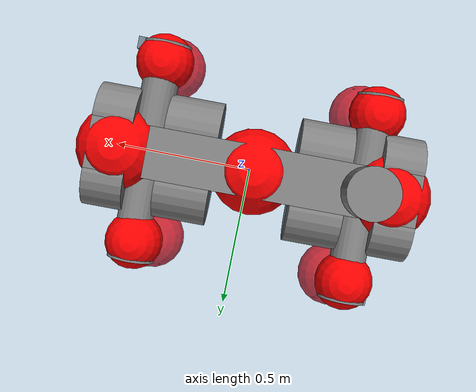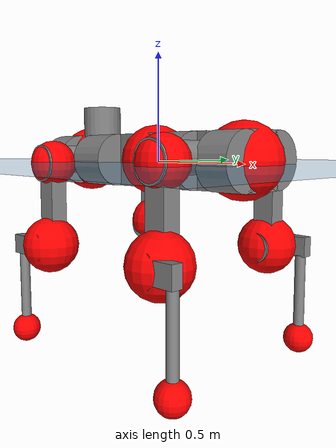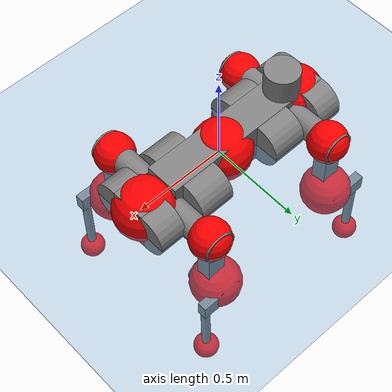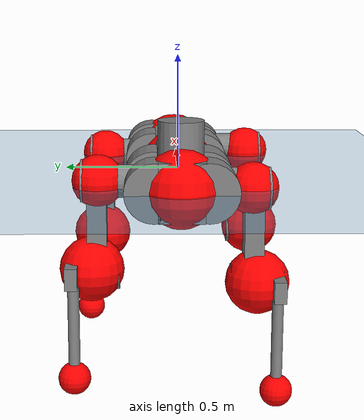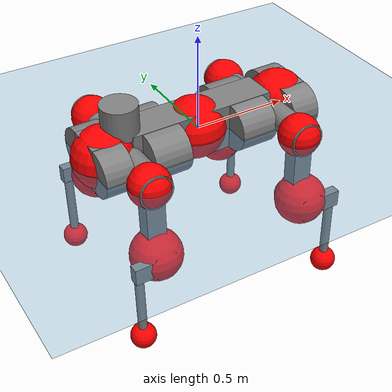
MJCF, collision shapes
<mujoco model="anymal_c">
  <compiler angle="radian" assetdir="assets" balanceinertia="true" inertiafromgeom="false"/>

  <option timestep="0.005" density="1.2" viscosity="2e-05"/>

  <size nkey="1"/>

  <visual>
    <quality shadowsize="8192"/>
    <map shadowclip="0.5"/>
  </visual>

  <default>
    <default class="/">
      <material specular="0" shininess="0.25"/>
      <geom contype="0" conaffinity="0" group="1" solref="-1000 -80"/>
      <site size="0.01 0.005 0.005" group="5"/>
      <general forcelimited="true" forcerange="-80 80" biastype="affine" gainprm="80" biasprm="0 -80 -2"/>
      <default class="anymal_c">
        <joint armature="0.01" damping="0.01" frictionloss="0.1"/>
        <default class="visual">
          <geom type="mesh" group="2"/>
          <default class="visual_zflip"/>
        </default>
        <default class="collision">
          <geom type="cylinder" group="3"/>
          <default class="foot">
            <geom size="0.03 0 0" type="sphere" condim="6" priority="1" friction="0.8 0.02 0.01" solimp="0.015 1 0.03"/>
          </default>
        </default>
      </default>
      <default class="reward_collision_sphere">
        <geom group="5" rgba="1 0 0 1"/>
      </default>
    </default>
  </default>

  <asset>
    <texture type="skybox" colorspace="auto" name="//unnamed_texture_0" builtin="gradient" rgb1="0.95 0.95 0.95" rgb2="0.95 0.95 0.95" width="100" height="600"/>
    <texture type="2d" colorspace="auto" name="texplane" builtin="checker" rgb1="0.345 0.575 0.748" rgb2="0.345 0.575 0.748" markrgb="1 1 1" width="512" height="512"/>
    <texture type="2d" colorspace="linear" name="base" file="base.png"/>
    <texture type="2d" colorspace="linear" name="top_shell" file="top_shell.png"/>
    <texture type="2d" colorspace="linear" name="bottom_shell" file="bottom_shell.png"/>
    <texture type="2d" colorspace="linear" name="remote" file="remote.png"/>
    <texture type="2d" colorspace="linear" name="hatch" file="hatch.png"/>
    <texture type="2d" colorspace="linear" name="handle" file="handle.png"/>
    <texture type="2d" colorspace="linear" name="face" file="face.png"/>
    <texture type="2d" colorspace="linear" name="battery" file="battery.png"/>
    <texture type="2d" colorspace="linear" name="lidar_cage" file="lidar_cage.png"/>
    <texture type="2d" colorspace="linear" name="depth_camera" file="depth_camera.png"/>
    <texture type="2d" colorspace="linear" name="wide_angle_camera" file="wide_angle_camera.png"/>
    <texture type="2d" colorspace="linear" name="lidar" file="lidar.png"/>
    <texture type="2d" colorspace="linear" name="drive" file="drive.png"/>
    <texture type="2d" colorspace="linear" name="hip_l" file="hip_l.png"/>
    <texture type="2d" colorspace="linear" name="shank_l" file="shank_l.png"/>
    <texture type="2d" colorspace="linear" name="foot" file="foot.png"/>
    <texture type="2d" colorspace="linear" name="thigh" file="thigh.png"/>
    <texture type="2d" colorspace="linear" name="shank_r" file="shank_r.png"/>
    <texture type="2d" colorspace="linear" name="hip_r" file="hip_r.png"/>
    <material name="MatPlane" class="/" texture="texplane" texuniform="true" texrepeat="2 2" specular="0.9" shininess="0.5"/>
    <material name="black_plastic" class="/" rgba="0.007 0.007 0.007 1"/>
    <material name="green" class="/" rgba="0.052 0.178 0.033 1"/>
    <material name="red" class="/" rgba="0.178 0.006 0.005 1"/>
    <material name="yellow" class="/" rgba="0.178 0.119 0.006 1"/>
    <material name="lwl" class="/" rgba="0.8 0.8 0.8 1"/>
    <material name="base" class="/" texture="base"/>
    <material name="top_shell" class="/" texture="top_shell"/>
    <material name="bottom_shell" class="/" texture="bottom_shell"/>
    <material name="hip_l" class="/" texture="hip_l"/>
    <material name="thigh" class="/" texture="thigh"/>
    <material name="shank_l" class="/" texture="shank_l"/>
    <material name="foot" class="/" texture="foot"/>
    <material name="hip_r" class="/" texture="hip_r"/>
    <material name="shank" class="/" texture="shank_r"/>
    <material name="hatch" class="/" texture="hatch"/>
    <material name="remote" class="/" texture="remote"/>
    <material name="handle" class="/" texture="handle"/>
    <material name="face" class="/" texture="face"/>
    <material name="depth_camera" class="/" texture="depth_camera"/>
    <material name="wide_angle_camera" class="/" texture="wide_angle_camera"/>
    <material name="battery" class="/" texture="battery"/>
    <material name="lidar_cage" class="/" texture="lidar_cage"/>
    <material name="lidar" class="/" texture="lidar"/>
    <material name="drive" class="/" texture="drive"/>
    <mesh name="base_0" class="/" file="base_0.obj"/>
    <mesh name="base_1" class="/" file="base_1.obj"/>
    <mesh name="base_2" class="/" file="base_2.obj"/>
    <mesh name="base_3" class="/" file="base_3.obj"/>
    <mesh name="base_4" class="/" file="base_4.obj"/>
    <mesh name="base_5" class="/" file="base_5.obj"/>
    <mesh name="top_shell" class="/" file="top_shell.obj"/>
    <mesh name="bottom_shell" class="/" file="bottom_shell.obj"/>
    <mesh name="remote" class="/" file="remote.obj"/>
    <mesh name="handle" class="/" file="handle.obj"/>
    <mesh name="face" class="/" file="face.obj"/>
    <mesh name="wide_angle_camera" class="/" file="wide_angle_camera.obj"/>
    <mesh name="depth_camera" class="/" file="depth_camera.obj"/>
    <mesh name="battery" class="/" file="battery.obj"/>
    <mesh name="lidar_cage" class="/" file="lidar_cage.obj"/>
    <mesh name="lidar" class="/" file="lidar.obj"/>
    <mesh name="drive" class="/" file="drive.obj"/>
    <mesh name="hip_l" class="/" file="hip_l.obj"/>
    <mesh name="thigh" class="/" file="thigh.obj"/>
    <mesh name="shank_l" class="/" file="shank_l.obj"/>
    <mesh name="foot" class="/" file="foot.obj"/>
    <mesh name="hip_r" class="/" file="hip_r.obj"/>
    <mesh name="hatch" class="/" file="hatch.obj"/>
    <mesh name="shank_r" class="/" file="shank_r.obj"/>
  </asset>

  <worldbody>
    <geom name="floor" class="/" size="100 100 0.125" type="plane" group="0" material="MatPlane"/>
    <light name="toplight_shadow" class="/" pos="0 0 5" dir="0.0990148 0.0990148 -0.990148" type="directional" ambient="0.04 0.04 0.04" diffuse="0.55 0.55 0.55" specular="0.12 0.12 0.12"/>
    <light name="toplight_fill" class="/" pos="0 0 5" dir="0.0990148 0.0990148 -0.990148" type="directional" castshadow="false" ambient="0.04 0.04 0.04" diffuse="0.3 0.3 0.3" specular="0.08 0.08 0.08"/>
    <body name="trunk" childclass="anymal_c" pos="-0.0174309 0.00314984 0.00972427" quat="0.999968 0.00196452 -0.00357227 0.00686792">
      <inertial pos="0.019515 -0.00940412 0.073209" quat="0.517518 0.502401 0.479909 0.499456" mass="50.7633" diaginertia="0.992214 4.91825 0.809701"/>
      <joint name="//unnamed_joint_0" type="free" armature="0" damping="0" frictionloss="0"/>
      <geom name="//unnamed_geom_1" class="visual" material="green" mesh="base_0"/>
      <geom name="//unnamed_geom_2" class="visual" material="yellow" mesh="base_1"/>
      <geom name="//unnamed_geom_3" class="visual" material="red" mesh="base_2"/>
      <geom name="//unnamed_geom_4" class="visual" material="black_plastic" mesh="base_3"/>
      <geom name="//unnamed_geom_5" class="visual" material="lwl" mesh="base_4"/>
      <geom name="//unnamed_geom_6" class="visual" material="base" mesh="base_5"/>
      <geom name="trunk_1" class="collision" size="0.390213 0.0941893 0.1211" type="box"/>
      <geom name="trunk_2" class="collision" size="0.1211 0.0975532" pos="0.243629 0.108884 0" quat="0.707107 0 0.707107 0"/>
      <geom name="trunk_3" class="collision" size="0.1211 0.0975532" pos="-0.243629 0.108884 0" quat="0.707107 0 0.707107 0"/>
      <geom name="trunk_4" class="collision" size="0.1211 0.0975532" pos="0.243629 -0.108884 0" quat="0.707107 0 0.707107 0"/>
      <geom name="trunk_5" class="collision" size="0.1211 0.0975532" pos="-0.243629 -0.108884 0" quat="0.707107 0 0.707107 0"/>
      <geom name="//unnamed_geom_12" class="visual" material="top_shell" mesh="top_shell"/>
      <geom name="//unnamed_geom_13" class="visual" material="bottom_shell" mesh="bottom_shell"/>
      <geom name="//unnamed_geom_14" class="visual" material="remote" mesh="remote"/>
      <geom name="//unnamed_geom_15" class="visual" material="handle" mesh="handle"/>
      <geom name="//unnamed_geom_16" class="visual" pos="0.464294 0 0" quat="1 0 0 0" material="face" mesh="face"/>
      <geom name="trunk_6" class="collision" size="0.0740059 0.0941893 0.1211" pos="0.525902 0 0" type="box"/>
      <geom name="//unnamed_geom_18" class="collision" size="0.1211 0.0740059" pos="0.525902 0.108884 0" quat="0.707107 0 0.707107 0"/>
      <geom name="//unnamed_geom_19" class="collision" size="0.1211 0.0740059" pos="0.525902 -0.108884 0" quat="0.707107 0 0.707107 0"/>
      <geom name="//unnamed_geom_20" class="visual" pos="0.517119 0 -0.041574" quat="0.965926 0 0.258819 0" material="depth_camera" mesh="depth_camera"/>
      <geom name="//unnamed_geom_21" class="visual" pos="0.574627 0 0.0203751" material="wide_angle_camera" mesh="wide_angle_camera"/>
      <geom name="//unnamed_geom_22" class="visual_zflip" pos="-0.464294 0 0" quat="0 0 0 1" material="face" mesh="face"/>
      <geom name="trunk_7" class="collision" size="0.0740059 0.0941893 0.1211" pos="-0.525902 0 0" quat="0 0 0 1" type="box"/>
      <geom name="//unnamed_geom_24" class="collision" size="0.1211 0.0740059" pos="-0.525902 -0.108884 0" quat="0 -0.707107 0 0.707107"/>
      <geom name="//unnamed_geom_25" class="collision" size="0.1211 0.0740059" pos="-0.525902 0.108884 0" quat="0 -0.707107 0 0.707107"/>
      <geom name="//unnamed_geom_26" class="visual" pos="-0.517119 0 -0.041574" quat="0 -0.258819 0 0.965926" material="depth_camera" mesh="depth_camera"/>
      <geom name="//unnamed_geom_27" class="visual_zflip" pos="-0.574627 0 0.0203751" quat="0 0 0 1" material="wide_angle_camera" mesh="wide_angle_camera"/>
      <geom name="//unnamed_geom_28" class="visual" material="battery" mesh="battery"/>
      <geom name="//unnamed_geom_29" class="visual" pos="0 0.124656 0.0377077" quat="0.683013 -0.183013 0.183013 0.683013" material="depth_camera" mesh="depth_camera"/>
      <geom name="//unnamed_geom_30" class="visual" pos="0 -0.124656 0.0377077" quat="0.683013 0.183013 0.183013 -0.683013" material="depth_camera" mesh="depth_camera"/>
      <geom name="//unnamed_geom_31" class="visual" pos="-0.407728 0 0.100038" quat="1 0 0 0" material="lidar_cage" mesh="lidar_cage"/>
      <geom name="trunk_8" class="collision" size="0.0941893 0.0807337" pos="-0.407728 0 0.181701"/>
      <geom name="//unnamed_geom_33" class="visual" pos="-0.407728 0.000171042 0.193543" quat="0.707107 0 0 -0.707107" material="lidar" mesh="lidar"/>
      <geom name="//unnamed_geom_34" class="visual" pos="0.335927 0.161702 3.354e-09" quat="0.258819 0.965926 0 0" material="drive" mesh="drive"/>
      <geom name="//unnamed_geom_35" class="visual" pos="0.335927 -0.161702 -3.354e-09" quat="0.258819 -0.965926 0 0" material="drive" mesh="drive"/>
      <geom name="//unnamed_geom_36" class="visual" pos="-0.335927 0.161702 -3.354e-09" quat="0 0 0.965926 -0.258819" material="drive" mesh="drive"/>
      <geom name="//unnamed_geom_37" class="visual" pos="-0.335927 -0.161702 3.354e-09" quat="0 0 -0.965926 -0.258819" material="drive" mesh="drive"/>
      <geom name="//unnamed_geom_38" class="visual" pos="0.129935 0 0.0993573" quat="1 0 0 0" material="hatch" mesh="hatch"/>
      <geom name="//unnamed_geom_39" class="reward_collision_sphere" size="0.161467"/>
      <geom name="//unnamed_geom_40" class="reward_collision_sphere" size="0.161467" pos="0.504059 0 0"/>
      <geom name="//unnamed_geom_41" class="reward_collision_sphere" size="0.161467" pos="-0.504059 0 0"/>
      <site name="imu" pos="0.295786 -0.0402488 -0.014647" size="0.0134556"/>
      <camera name="track" pos="0 -3.11099 0" quat="0.707107 0.707107 0 0" mode="trackcom"/>
      <camera name="ego_camera" pos="0.504059 0 -0.0544424" quat="-0.5 -0.5 0.5 0.5"/>
      <body name="LF_HIP" pos="0.335617 0.168813 -0.00894761" quat="0.263261 0.964724 0.000988035 -0.00059117">
        <inertial pos="0.057479 -0.0108241 -0.00679809" quat="-0.14278 0.700195 -0.135242 0.686331" mass="7.02761" diaginertia="0.00746054 0.0360939 0.0152286"/>
        <joint name="LF_HAA" pos="0 0 0" axis="0.996307 -0.0338138 0.0789189" stiffness="0.0420681" range="-1.05867 0.5708" armature="0.0139716" damping="0" frictionloss="0.13315"/>
        <geom name="//unnamed_geom_42" class="visual" pos="0 0.000197301 -3.24065e-05" quat="0.258819 -0.965926 0 0" material="hip_l" mesh="hip_l"/>
        <geom name="//unnamed_geom_43" class="visual" pos="0.0670959 -0.086964 -0.0487706" quat="0.183013 -0.683013 0.683013 0.183013" material="drive" mesh="drive"/>
        <geom name="//unnamed_geom_44" class="collision" size="0.0672781 0.0941893" pos="0.0670959 -0.0186034 -0.00939811" quat="-0.353553 -0.612372 0.612372 -0.353553"/>
        <body name="LF_THIGH" pos="0.0570338 -0.116396 -0.0678616" quat="0.183604 -0.687787 0.67907 0.179172">
          <inertial pos="0.021779 0.0118781 -0.318607" quat="0.993521 -0.00483363 -0.0785339 0.0820082" mass="9.00704" diaginertia="0.0542428 0.303504 0.0176406"/>
          <joint name="LF_HFE" pos="0 0 0" axis="0.999221 0.0319386 0.0231685" stiffness="0.0885839" range="-3.32834 3.15223" armature="0.0198198" damping="0.000198388" frictionloss="0.188504"/>
          <geom name="//unnamed_geom_45" class="visual" pos="-0.00866198 -1.36493e-05 0" quat="0.707107 0 0 -0.707107" material="thigh" mesh="thigh"/>
          <geom name="//unnamed_geom_46" class="collision" size="0.0874615 0.0538224" pos="0.0448053 0 0" quat="0.5 0.5 -0.5 -0.5"/>
          <geom name="//unnamed_geom_47" class="collision" size="0.0504585 0.0403668 0.190147" pos="0.0336039 0 -0.192337" quat="0.707107 0 0 -0.707107" type="box"/>
          <geom name="//unnamed_geom_48" class="visual" pos="0.112349 0 -0.387902" quat="1 0 0 0" material="drive" mesh="drive"/>
          <geom name="//unnamed_geom_49" class="collision" size="0.0672781 0.0941893" pos="0.03394 0 -0.387902" quat="0.707107 0 0.707107 0"/>
          <geom name="//unnamed_geom_50" class="reward_collision_sphere" size="0.107645" pos="0.0280033 0 0"/>
          <body name="LF_SHANK" pos="0.108186 0.0159266 -0.386957" quat="0.999983 0.00259911 -0.00515548 0.000598891">
            <inertial pos="0.0202772 -0.0944558 -0.121967" quat="0.990002 -0.123845 -0.00903238 -0.0669067" mass="1.35939" diaginertia="0.0158886 0.0557492 0.00369422"/>
            <joint name="LF_KFE" pos="0 0 0" axis="0.999188 -0.023205 -0.0329367" range="-2.82412 3.0832" armature="0.00706533" damping="0.0859777" frictionloss="0.064725"/>
            <geom name="//unnamed_geom_51" class="visual" pos="-0.00282448 -0.0150603 0" quat="0.707107 0 0 -0.707107" material="shank_l" mesh="shank_l"/>
            <geom name="LF_kfe_act" class="collision" size="0.0807337 0.0269112" pos="0.0224026 0 0" quat="0.5 0.5 -0.5 -0.5"/>
            <geom name="//unnamed_geom_53" class="collision" size="0.0773684 0.0454127 0.0255657" pos="0.0224026 -0.0894393 0" quat="0.5 0.5 -0.5 -0.5" type="box"/>
            <geom name="//unnamed_geom_54" class="visual" pos="0.0146184 -0.141659 -0.459997" quat="0.382683 0 0 -0.92388" material="foot" mesh="foot"/>
            <geom name="LF_calf" class="collision" size="0.0235473 0.190063" pos="0.0146177 -0.136806 -0.229999" quat="0.707107 0 0 -0.707107"/>
            <geom name="LF_foot" class="foot" size="0.0319799" pos="0.0146177 -0.136806 -0.429373" quat="0.707107 0 0 -0.707107"/>
            <geom name="//unnamed_geom_57" class="reward_collision_sphere" size="0.134556" pos="-0.0560066 0 0"/>
            <geom name="//unnamed_geom_58" class="reward_collision_sphere" size="0.0672781" pos="0.0146177 -0.136806 -0.429373"/>
            <site name="LF_foot" class="foot" pos="0.0146177 -0.136806 -0.429373" quat="0.707107 0 0 -0.707107" size="0.0134556"/>
          </body>
        </body>
      </body>
      <body name="RF_HIP" pos="0.331524 -0.168919 0.0160837" quat="0.254531 -0.967051 0.00457174 -0.00224795">
        <inertial pos="0.0532779 0.0389081 -0.0111485" quat="0.104004 0.727217 0.116666 0.668377" mass="6.79086" diaginertia="0.013672 0.0506573 0.0200485"/>
        <joint name="RF_HAA" pos="0 0 0" axis="0.998621 -0.000787218 0.0524851" stiffness="0.0325285" range="-0.647863 0.72307" armature="0.00896175" damping="0" frictionloss="0.232649"/>
        <geom name="//unnamed_geom_59" class="visual" pos="0 -0.000197299 -3.24064e-05" quat="0.258819 0.965926 0 0" material="hip_r" mesh="hip_r"/>
        <geom name="//unnamed_geom_60" class="visual" pos="0.0670959 0.086964 -0.0487706" quat="0.183013 0.683013 0.683013 -0.183013" material="drive" mesh="drive"/>
        <geom name="//unnamed_geom_61" class="collision" size="0.0672781 0.0941893" pos="0.0670959 0.0186034 -0.00939811" quat="-0.353553 0.612372 0.612372 0.353553"/>
        <body name="RF_THIGH" pos="0.0668345 0.130118 -0.0583086" quat="0.182804 0.682966 0.682835 -0.184058">
          <inertial pos="0.0237357 0.0134369 -0.330734" quat="0.993894 -0.0390897 -0.032357 0.0979751" mass="7.18778" diaginertia="0.0626322 0.335199 0.018023"/>
          <joint name="RF_HFE" pos="0 0 0" axis="0.999991 -0.00227133 0.00361194" stiffness="0.0550617" range="-3.05405 2.86084" armature="0.0130814" damping="0.0371261" frictionloss="0.0718893"/>
          <geom name="//unnamed_geom_62" class="visual" pos="-0.00866198 -1.36493e-05 0" quat="0.707107 0 0 -0.707107" material="thigh" mesh="thigh"/>
          <geom name="//unnamed_geom_63" class="collision" size="0.0874615 0.0538224" pos="0.0448053 0 0" quat="0.5 0.5 0.5 0.5"/>
          <geom name="//unnamed_geom_64" class="collision" size="0.0504585 0.0403668 0.190147" pos="0.0336039 0 -0.192337" quat="0.707107 0 0 0.707107" type="box"/>
          <geom name="//unnamed_geom_65" class="visual" pos="0.112349 0 -0.387902" quat="1 0 0 0" material="drive" mesh="drive"/>
          <geom name="//unnamed_geom_66" class="collision" size="0.0672781 0.0941893" pos="0.03394 0 -0.387902" quat="0.707107 0 0.707107 0"/>
          <geom name="//unnamed_geom_67" class="reward_collision_sphere" size="0.107645" pos="0.0280033 0 0"/>
          <body name="RF_SHANK" pos="0.112697 0.0138641 -0.380187" quat="1 -0.000372315 -0.00015503 0.000174301">
            <inertial pos="0.00694158 0.0923183 -0.111367" quat="0.991258 0.11659 0.0562703 -0.0254462" mass="1.48841" diaginertia="0.0179853 0.0843965 0.00610828"/>
            <joint name="RF_KFE" pos="0 0 0" axis="0.996623 -0.00405977 -0.0820143" stiffness="0.0741078" range="-3.19566 2.88693" armature="0.0189787" damping="0" frictionloss="0.193543"/>
            <geom name="//unnamed_geom_68" class="visual" pos="-0.00282447 0.0150603 0" quat="0.707107 0 0 0.707107" material="shank" mesh="shank_r"/>
            <geom name="RF_kfe_act" class="collision" size="0.0807337 0.0269112" pos="0.0224026 0 0" quat="0.5 0.5 0.5 0.5"/>
            <geom name="//unnamed_geom_70" class="collision" size="0.0773684 0.0454127 0.0255657" pos="0.0224026 0.0894393 0" quat="0.5 0.5 0.5 0.5" type="box"/>
            <geom name="//unnamed_geom_71" class="visual" pos="0.014617 0.141659 -0.459997" quat="0.382683 0 0 0.92388" material="foot" mesh="foot"/>
            <geom name="RF_calf" class="collision" size="0.0235473 0.190063" pos="0.0146177 0.136806 -0.229999" quat="0.707107 0 0 0.707107"/>
            <geom name="RF_foot" class="foot" size="0.0512643" pos="0.0146177 0.136806 -0.429373" quat="0.707107 0 0 0.707107"/>
            <geom name="//unnamed_geom_74" class="reward_collision_sphere" size="0.134556" pos="-0.0560066 0 0"/>
            <geom name="//unnamed_geom_75" class="reward_collision_sphere" size="0.0672781" pos="0.0146177 0.136806 -0.429373"/>
            <site name="RF_foot" class="foot" pos="0.0146177 0.136806 -0.429373" quat="0.707107 0 0 0.707107" size="0.0134556"/>
          </body>
        </body>
      </body>
      <body name="LH_HIP" pos="-0.334661 0.160804 0.0131294" quat="6.11777e-05 -0.000111609 0.966157 -0.257955">
        <inertial pos="0.0551581 0.00731005 0.00175718" quat="0.0759158 0.650086 0.182713 0.733649" mass="5.00218" diaginertia="0.00914622 0.0425209 0.0114568"/>
        <joint name="LH_HAA" pos="0 0 0" axis="0.999966 -0.00816663 -0.000669501" range="-0.399899 0.944501" armature="0.0222529" damping="0.0390117" frictionloss="0.0316339"/>
        <geom name="//unnamed_geom_76" class="visual" pos="0 -0.000197299 -3.24064e-05" quat="-0.258819 -0.965926 0 0" material="hip_r" mesh="hip_r"/>
        <geom name="//unnamed_geom_77" class="visual" pos="0.0670959 0.086964 -0.0487706" quat="0.183013 0.683013 0.683013 -0.183013" material="drive" mesh="drive"/>
        <geom name="//unnamed_geom_78" class="collision" size="0.0672781 0.0941893" pos="0.0670959 0.0186034 -0.00939811" quat="-0.353553 0.612372 0.612372 0.353553"/>
        <body name="LH_THIGH" pos="0.0655262 0.127813 -0.0722882" quat="0.184065 0.681504 0.684182 -0.183212">
          <inertial pos="0.0350762 5.0864e-05 -0.339527" quat="0.990216 -0.0136446 -0.0626146 0.123957" mass="5.42226" diaginertia="0.0472351 0.233028 0.0151879"/>
          <joint name="LH_HFE" pos="0 0 0" axis="0.998387 -0.0494916 0.0278365" range="-3.19879 3.07716" armature="0.00514695" damping="0.0683494" frictionloss="0.138911"/>
          <geom name="//unnamed_geom_79" class="visual" pos="-0.00866198 -1.36493e-05 0" quat="0.707107 0 0 -0.707107" material="thigh" mesh="thigh"/>
          <geom name="//unnamed_geom_80" class="collision" size="0.0874615 0.0538224" pos="0.0448053 0 0" quat="0.5 0.5 -0.5 -0.5"/>
          <geom name="//unnamed_geom_81" class="collision" size="0.0504585 0.0403668 0.190147" pos="0.0336039 0 -0.192337" quat="0.707107 0 0 -0.707107" type="box"/>
          <geom name="//unnamed_geom_82" class="visual" pos="0.112349 0 -0.387902" quat="1 0 0 0" material="drive" mesh="drive"/>
          <geom name="//unnamed_geom_83" class="collision" size="0.0672781 0.0941893" pos="0.03394 0 -0.387902" quat="0.707107 0 0.707107 0"/>
          <geom name="//unnamed_geom_84" class="reward_collision_sphere" size="0.107645" pos="0.0280033 0 0"/>
          <body name="LH_SHANK" pos="0.111511 -0.000909938 -0.371863" quat="0.999996 -0.00132197 0.00254571 -0.000105881">
            <inertial pos="0.0141756 0.0782843 -0.112906" quat="0.991356 0.108743 -0.0343242 0.0648799" mass="1.28452" diaginertia="0.0183272 0.0732246 0.00572888"/>
            <joint name="LH_KFE" pos="0 0 0" axis="0.999672 -0.0141502 -0.0213554" stiffness="0.0875678" range="-3.14695 2.95197" armature="0.00671806" damping="0.063741" frictionloss="0.0221986"/>
            <geom name="//unnamed_geom_85" class="visual" pos="-0.00282447 0.0150603 0" quat="-0.707107 0 0 -0.707107" material="shank" mesh="shank_r"/>
            <geom name="LH_kfe_act" class="collision" size="0.0807337 0.0269112" pos="0.0224026 0 0" quat="0.5 0.5 -0.5 -0.5"/>
            <geom name="//unnamed_geom_87" class="collision" size="0.0773684 0.0454127 0.0255657" pos="0.0224026 0.0894393 0" quat="0.5 0.5 -0.5 -0.5" type="box"/>
            <geom name="//unnamed_geom_88" class="visual" pos="0.014617 0.141659 -0.459997" quat="-0.382683 0 0 -0.92388" material="foot" mesh="foot"/>
            <geom name="LH_calf" class="collision" size="0.0235473 0.190063" pos="0.0146177 0.136806 -0.229999" quat="0.707107 0 0 -0.707107"/>
            <geom name="LH_foot" class="foot" size="0.0556289" pos="0.0146177 0.136806 -0.429373" quat="0.707107 0 0 -0.707107"/>
            <geom name="//unnamed_geom_91" class="reward_collision_sphere" size="0.134556" pos="-0.0560066 0 0"/>
            <geom name="//unnamed_geom_92" class="reward_collision_sphere" size="0.0672781" pos="0.0146177 0.136806 -0.429373"/>
            <site name="LH_foot" class="foot" pos="0.0146177 0.136806 -0.429373" quat="0.707107 0 0 -0.707107" size="0.0134556"/>
          </body>
        </body>
      </body>
      <body name="RH_HIP" pos="-0.343893 -0.151525 0.00507622" quat="-0.00675146 0.00132334 -0.967061 -0.254451">
        <inertial pos="0.0466795 -0.0368764 0.00539379" quat="-0.152738 0.687809 -0.0882127 0.704137" mass="6.79335" diaginertia="0.0105043 0.0458862 0.0159976"/>
        <joint name="RH_HAA" pos="0 0 0" axis="0.996322 -0.0670276 0.0533813" range="-0.882156 0.393744" armature="0.0205159" damping="0.0344718" frictionloss="0.0978547"/>
        <geom name="//unnamed_geom_93" class="visual" pos="0 0.000197301 -3.24065e-05" quat="-0.258819 0.965926 0 0" material="hip_l" mesh="hip_l"/>
        <geom name="//unnamed_geom_94" class="visual" pos="0.0670959 -0.086964 -0.0487706" quat="-0.183013 0.683013 -0.683013 -0.183013" material="drive" mesh="drive"/>
        <geom name="//unnamed_geom_95" class="collision" size="0.0672781 0.0941893" pos="0.0670959 -0.0186034 -0.00939811" quat="0.353553 0.612372 -0.612372 0.353553"/>
        <body name="RH_THIGH" pos="0.0737853 -0.109679 -0.0401717" quat="-0.18298 0.682965 -0.682992 -0.183299">
          <inertial pos="0.0388356 -0.000839501 -0.335126" quat="0.992828 -0.00438981 -0.0866454 0.0822547" mass="8.82417" diaginertia="0.0565205 0.230678 0.0193711"/>
          <joint name="RH_HFE" pos="0 0 0" axis="0.99961 0.0077109 -0.0268257" range="-3.13635 2.84519" armature="0.0159924" damping="0.0048693" frictionloss="0.0974382"/>
          <geom name="//unnamed_geom_96" class="visual" pos="-0.00866198 -1.36493e-05 0" quat="0.707107 0 0 -0.707107" material="thigh" mesh="thigh"/>
          <geom name="//unnamed_geom_97" class="collision" size="0.0874615 0.0538224" pos="0.0448053 0 0" quat="0.5 0.5 0.5 0.5"/>
          <geom name="//unnamed_geom_98" class="collision" size="0.0504585 0.0403668 0.190147" pos="0.0336039 0 -0.192337" quat="0.707107 0 0 0.707107" type="box"/>
          <geom name="//unnamed_geom_99" class="visual" pos="0.112349 0 -0.387902" quat="1 0 0 0" material="drive" mesh="drive"/>
          <geom name="//unnamed_geom_100" class="collision" size="0.0672781 0.0941893" pos="0.03394 0 -0.387902" quat="0.707107 0 0.707107 0"/>
          <geom name="//unnamed_geom_101" class="reward_collision_sphere" size="0.107645" pos="0.0280033 0 0"/>
          <body name="RH_SHANK" pos="0.10764 -0.0020791 -0.397786" quat="0.999999 -6.622e-05 0.00111926 -0.00109885">
            <inertial pos="0.0190329 -0.0995173 -0.108153" quat="0.993491 -0.10679 -0.0378871 0.0116443" mass="1.49418" diaginertia="0.0160756 0.0823135 0.00431486"/>
            <joint name="RH_KFE" pos="0 0 0" axis="0.996985 -0.0772754 0.00701301" stiffness="0.00501727" range="-2.97766 3.16379" armature="0.0179157" damping="0" frictionloss="0.180264"/>
            <geom name="//unnamed_geom_102" class="visual" pos="-0.00282448 -0.0150603 0" quat="0.707107 0 0 -0.707107" material="shank_l" mesh="shank_l"/>
            <geom name="RH_kfe_act" class="collision" size="0.0807337 0.0269112" pos="0.0224026 0 0" quat="0.5 0.5 0.5 0.5"/>
            <geom name="//unnamed_geom_104" class="collision" size="0.0773684 0.0454127 0.0255657" pos="0.0224026 -0.0894393 0" quat="0.5 0.5 0.5 0.5" type="box"/>
            <geom name="//unnamed_geom_105" class="visual" pos="0.0146184 -0.141659 -0.459997" quat="0.382683 0 0 -0.92388" material="foot" mesh="foot"/>
            <geom name="RH_calf" class="collision" size="0.0235473 0.190063" pos="0.0146177 -0.136806 -0.229999" quat="0.707107 0 0 0.707107"/>
            <geom name="RH_foot" class="foot" size="0.0625064" pos="0.0146177 -0.136806 -0.429373" quat="0.707107 0 0 0.707107"/>
            <geom name="//unnamed_geom_108" class="reward_collision_sphere" size="0.134556" pos="-0.0560066 0 0"/>
            <geom name="//unnamed_geom_109" class="reward_collision_sphere" size="0.0672781" pos="0.0146177 -0.136806 -0.429373"/>
            <site name="RH_foot" class="foot" pos="0.0146177 -0.136806 -0.429373" quat="0.707107 0 0 0.707107" size="0.0134556"/>
          </body>
        </body>
      </body>
    </body>
  </worldbody>

  <contact>
    <pair class="/" geom1="floor" geom2="LF_foot" name="//unnamed_contact_0"/>
    <pair class="/" geom1="floor" geom2="RF_foot" name="//unnamed_contact_1"/>
    <pair class="/" geom1="floor" geom2="LH_foot" name="//unnamed_contact_2"/>
    <pair class="/" geom1="floor" geom2="RH_foot" name="//unnamed_contact_3"/>
  </contact>

  <actuator>
    <general name="LF_HAA" class="/" joint="LF_HAA" forcerange="-107.965 107.965" gainprm="78.1576" biasprm="0 -78.1576 -3.52707"/>
    <general name="LF_HFE" class="/" joint="LF_HFE" forcerange="-149.898 149.898" gainprm="78.1576" biasprm="0 -78.1576 -3.52707"/>
    <general name="LF_KFE" class="/" joint="LF_KFE" forcerange="-125.145 125.145" gainprm="78.1576" biasprm="0 -78.1576 -3.52707"/>
    <general name="RF_HAA" class="/" joint="RF_HAA" forcerange="-117.546 117.546" gainprm="78.1576" biasprm="0 -78.1576 -3.52707"/>
    <general name="RF_HFE" class="/" joint="RF_HFE" forcerange="-65.8575 65.8575" gainprm="78.1576" biasprm="0 -78.1576 -3.52707"/>
    <general name="RF_KFE" class="/" joint="RF_KFE" forcerange="-111.785 111.785" gainprm="78.1576" biasprm="0 -78.1576 -3.52707"/>
    <general name="LH_HAA" class="/" joint="LH_HAA" forcerange="-41.3875 41.3875" gainprm="78.1576" biasprm="0 -78.1576 -3.52707"/>
    <general name="LH_HFE" class="/" joint="LH_HFE" forcerange="-148.3 148.3" gainprm="78.1576" biasprm="0 -78.1576 -3.52707"/>
    <general name="LH_KFE" class="/" joint="LH_KFE" forcerange="-173.87 173.87" gainprm="78.1576" biasprm="0 -78.1576 -3.52707"/>
    <general name="RH_HAA" class="/" joint="RH_HAA" forcerange="-156.746 156.746" gainprm="78.1576" biasprm="0 -78.1576 -3.52707"/>
    <general name="RH_HFE" class="/" joint="RH_HFE" forcerange="-43.1672 43.1672" gainprm="78.1576" biasprm="0 -78.1576 -3.52707"/>
    <general name="RH_KFE" class="/" joint="RH_KFE" forcerange="-89.6389 89.6389" gainprm="78.1576" biasprm="0 -78.1576 -3.52707"/>
  </actuator>

  <sensor>
    <gyro site="imu" name="imu_angular_velocity"/>
    <velocimeter site="imu" name="imu_linear_velocity"/>
    <framelinvel objtype="site" objname="LF_foot" name="LF_foot_global_linear_velocity"/>
    <framelinvel objtype="site" objname="RF_foot" name="RF_foot_global_linear_velocity"/>
    <framelinvel objtype="site" objname="LH_foot" name="LH_foot_global_linear_velocity"/>
    <framelinvel objtype="site" objname="RH_foot" name="RH_foot_global_linear_velocity"/>
  </sensor>

  <keyframe>
    <key name="home" qpos="0 0 0.55 1 0 0 0 0 0.4 -0.8 0 -0.4 0.8 0 -0.4 0.8 0 0.4 -0.8"/>
  </keyframe>
</mujoco>
